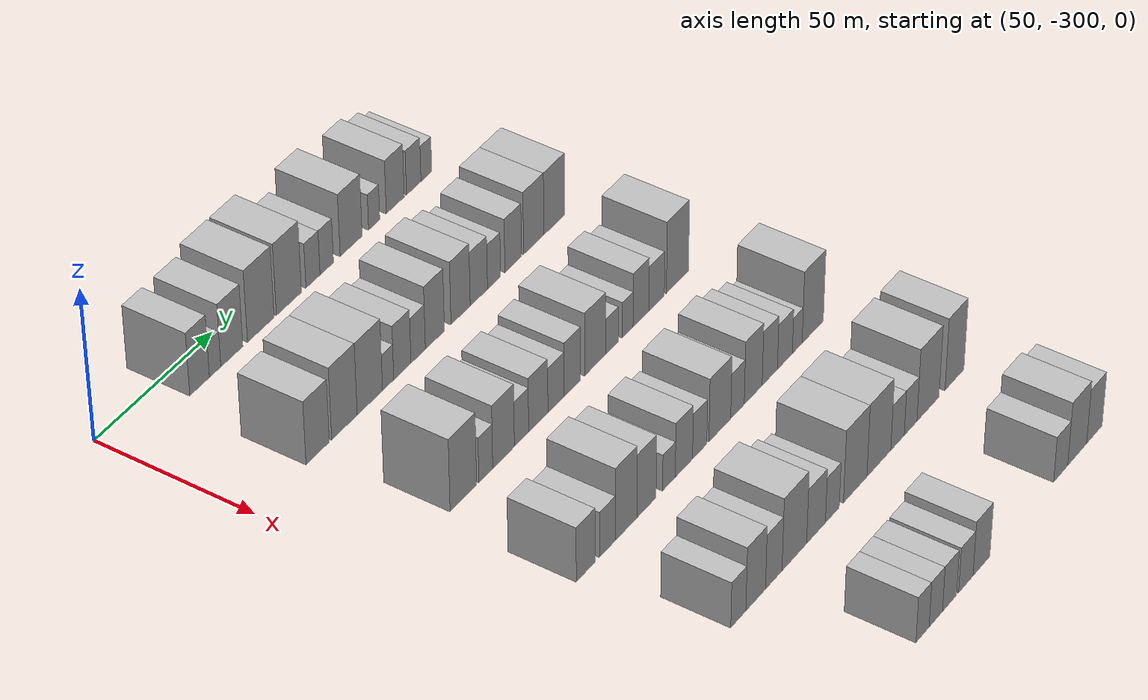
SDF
<sdf version="1.6">
 <world name="default">
  <model name="building_37">
   <static>1</static>
   <pose>50.0000 -268.9825 0 0.000000 0.000000 0.000000</pose>
   <link name="link">
    <pose>0 0 10.50 0 0 0</pose>
    <collision name="collision"><geometry><box><size>20.0000 8.4252 21.0000</size></box></geometry></collision>
    <visual name="visual">
     <cast_shadows>0</cast_shadows>
     <geometry><box><size>20.0000 8.4252 21.0000</size></box></geometry>
     <material>
      <script>
       <uri>model://HANNAS_wall/materials/scripts</uri>
       <uri>model://HANNAS_wall/materials/textures</uri>
       <name>vrc/HANNAS_wall</name>
      </script>
     </material>
    </visual>
   </link>
  </model>
  <model name="building_38">
   <static>1</static>
   <pose>50.0000 -262.3233 0 0.000000 0.000000 0.000000</pose>
   <link name="link">
    <pose>0 0 6.00 0 0 0</pose>
    <collision name="collision"><geometry><box><size>20.0000 4.8932 12.0000</size></box></geometry></collision>
    <visual name="visual">
     <cast_shadows>0</cast_shadows>
     <geometry><box><size>20.0000 4.8932 12.0000</size></box></geometry>
     <material>
      <script>
       <uri>model://HANNAS_wall/materials/scripts</uri>
       <uri>model://HANNAS_wall/materials/textures</uri>
       <name>vrc/HANNAS_wall</name>
      </script>
     </material>
    </visual>
   </link>
  </model>
  <model name="building_39">
   <static>1</static>
   <pose>50.0000 -255.0988 0 0.000000 0.000000 0.000000</pose>
   <link name="link">
    <pose>0 0 10.50 0 0 0</pose>
    <collision name="collision"><geometry><box><size>20.0000 9.5558 21.0000</size></box></geometry></collision>
    <visual name="visual">
     <cast_shadows>0</cast_shadows>
     <geometry><box><size>20.0000 9.5558 21.0000</size></box></geometry>
     <material>
      <script>
       <uri>model://HANNAS_wall/materials/scripts</uri>
       <uri>model://HANNAS_wall/materials/textures</uri>
       <name>vrc/HANNAS_wall</name>
      </script>
     </material>
    </visual>
   </link>
  </model>
  <model name="building_40">
   <static>1</static>
   <pose>50.0000 -242.4842 0 0.000000 0.000000 0.000000</pose>
   <link name="link">
    <pose>0 0 12.00 0 0 0</pose>
    <collision name="collision"><geometry><box><size>20.0000 11.6735 24.0000</size></box></geometry></collision>
    <visual name="visual">
     <cast_shadows>0</cast_shadows>
     <geometry><box><size>20.0000 11.6735 24.0000</size></box></geometry>
     <material>
      <script>
       <uri>model://HANNAS_wall/materials/scripts</uri>
       <uri>model://HANNAS_wall/materials/textures</uri>
       <name>vrc/HANNAS_wall</name>
      </script>
     </material>
    </visual>
   </link>
  </model>
  <model name="building_41">
   <static>1</static>
   <pose>50.0000 -230.0605 0 0.000000 0.000000 0.000000</pose>
   <link name="link">
    <pose>0 0 12.00 0 0 0</pose>
    <collision name="collision"><geometry><box><size>20.0000 11.1737 24.0000</size></box></geometry></collision>
    <visual name="visual">
     <cast_shadows>0</cast_shadows>
     <geometry><box><size>20.0000 11.1737 24.0000</size></box></geometry>
     <material>
      <script>
       <uri>model://HANNAS_wall/materials/scripts</uri>
       <uri>model://HANNAS_wall/materials/textures</uri>
       <name>vrc/HANNAS_wall</name>
      </script>
     </material>
    </visual>
   </link>
  </model>
  <model name="building_42">
   <static>1</static>
   <pose>50.0000 -219.3116 0 0.000000 0.000000 0.000000</pose>
   <link name="link">
    <pose>0 0 7.50 0 0 0</pose>
    <collision name="collision"><geometry><box><size>20.0000 6.3242 15.0000</size></box></geometry></collision>
    <visual name="visual">
     <cast_shadows>0</cast_shadows>
     <geometry><box><size>20.0000 6.3242 15.0000</size></box></geometry>
     <material>
      <script>
       <uri>model://HANNAS_wall/materials/scripts</uri>
       <uri>model://HANNAS_wall/materials/textures</uri>
       <name>vrc/HANNAS_wall</name>
      </script>
     </material>
    </visual>
   </link>
  </model>
  <model name="building_43">
   <static>1</static>
   <pose>50.0000 -213.1050 0 0.000000 0.000000 0.000000</pose>
   <link name="link">
    <pose>0 0 7.50 0 0 0</pose>
    <collision name="collision"><geometry><box><size>20.0000 6.0891 15.0000</size></box></geometry></collision>
    <visual name="visual">
     <cast_shadows>0</cast_shadows>
     <geometry><box><size>20.0000 6.0891 15.0000</size></box></geometry>
     <material>
      <script>
       <uri>model://HANNAS_wall/materials/scripts</uri>
       <uri>model://HANNAS_wall/materials/textures</uri>
       <name>vrc/HANNAS_wall</name>
      </script>
     </material>
    </visual>
   </link>
  </model>
  <model name="building_44">
   <static>1</static>
   <pose>50.0000 -202.0344 0 0.000000 0.000000 0.000000</pose>
   <link name="link">
    <pose>0 0 10.50 0 0 0</pose>
    <collision name="collision"><geometry><box><size>20.0000 10.0521 21.0000</size></box></geometry></collision>
    <visual name="visual">
     <cast_shadows>0</cast_shadows>
     <geometry><box><size>20.0000 10.0521 21.0000</size></box></geometry>
     <material>
      <script>
       <uri>model://HANNAS_wall/materials/scripts</uri>
       <uri>model://HANNAS_wall/materials/textures</uri>
       <name>vrc/HANNAS_wall</name>
      </script>
     </material>
    </visual>
   </link>
  </model>
  <model name="building_45">
   <static>1</static>
   <pose>50.0000 -191.4373 0 0.000000 0.000000 0.000000</pose>
   <link name="link">
    <pose>0 0 6.00 0 0 0</pose>
    <collision name="collision"><geometry><box><size>20.0000 5.1422 12.0000</size></box></geometry></collision>
    <visual name="visual">
     <cast_shadows>0</cast_shadows>
     <geometry><box><size>20.0000 5.1422 12.0000</size></box></geometry>
     <material>
      <script>
       <uri>model://HANNAS_wall/materials/scripts</uri>
       <uri>model://HANNAS_wall/materials/textures</uri>
       <name>vrc/HANNAS_wall</name>
      </script>
     </material>
    </visual>
   </link>
  </model>
  <model name="building_46">
   <static>1</static>
   <pose>50.0000 -181.6543 0 0.000000 0.000000 0.000000</pose>
   <link name="link">
    <pose>0 0 9.00 0 0 0</pose>
    <collision name="collision"><geometry><box><size>20.0000 8.4238 18.0000</size></box></geometry></collision>
    <visual name="visual">
     <cast_shadows>0</cast_shadows>
     <geometry><box><size>20.0000 8.4238 18.0000</size></box></geometry>
     <material>
      <script>
       <uri>model://HANNAS_wall/materials/scripts</uri>
       <uri>model://HANNAS_wall/materials/textures</uri>
       <name>vrc/HANNAS_wall</name>
      </script>
     </material>
    </visual>
   </link>
  </model>
  <model name="building_47">
   <static>1</static>
   <pose>50.0000 -173.0254 0 0.000000 0.000000 0.000000</pose>
   <link name="link">
    <pose>0 0 7.50 0 0 0</pose>
    <collision name="collision"><geometry><box><size>20.0000 6.8339 15.0000</size></box></geometry></collision>
    <visual name="visual">
     <cast_shadows>0</cast_shadows>
     <geometry><box><size>20.0000 6.8339 15.0000</size></box></geometry>
     <material>
      <script>
       <uri>model://HANNAS_wall/materials/scripts</uri>
       <uri>model://HANNAS_wall/materials/textures</uri>
       <name>vrc/HANNAS_wall</name>
      </script>
     </material>
    </visual>
   </link>
  </model>
  <model name="building_48">
   <static>1</static>
   <pose>50.0000 -167.0512 0 0.000000 0.000000 0.000000</pose>
   <link name="link">
    <pose>0 0 6.00 0 0 0</pose>
    <collision name="collision"><geometry><box><size>20.0000 5.1144 12.0000</size></box></geometry></collision>
    <visual name="visual">
     <cast_shadows>0</cast_shadows>
     <geometry><box><size>20.0000 5.1144 12.0000</size></box></geometry>
     <material>
      <script>
       <uri>model://HANNAS_wall/materials/scripts</uri>
       <uri>model://HANNAS_wall/materials/textures</uri>
       <name>vrc/HANNAS_wall</name>
      </script>
     </material>
    </visual>
   </link>
  </model>
  <model name="building_174">
   <static>1</static>
   <pose>90.0000 -273.3485 0 0.000000 0.000000 0.000000</pose>
   <link name="link">
    <pose>0 0 10.50 0 0 0</pose>
    <collision name="collision"><geometry><box><size>20.0000 10.0817 21.0000</size></box></geometry></collision>
    <visual name="visual">
     <cast_shadows>0</cast_shadows>
     <geometry><box><size>20.0000 10.0817 21.0000</size></box></geometry>
     <material>
      <script>
       <uri>model://HANNAS_wall/materials/scripts</uri>
       <uri>model://HANNAS_wall/materials/textures</uri>
       <name>vrc/HANNAS_wall</name>
      </script>
     </material>
    </visual>
   </link>
  </model>
  <model name="building_175">
   <static>1</static>
   <pose>90.0000 -261.7216 0 0.000000 0.000000 0.000000</pose>
   <link name="link">
    <pose>0 0 12.00 0 0 0</pose>
    <collision name="collision"><geometry><box><size>20.0000 11.1722 24.0000</size></box></geometry></collision>
    <visual name="visual">
     <cast_shadows>0</cast_shadows>
     <geometry><box><size>20.0000 11.1722 24.0000</size></box></geometry>
     <material>
      <script>
       <uri>model://HANNAS_wall/materials/scripts</uri>
       <uri>model://HANNAS_wall/materials/textures</uri>
       <name>vrc/HANNAS_wall</name>
      </script>
     </material>
    </visual>
   </link>
  </model>
  <model name="building_176">
   <static>1</static>
   <pose>90.0000 -250.5348 0 0.000000 0.000000 0.000000</pose>
   <link name="link">
    <pose>0 0 12.00 0 0 0</pose>
    <collision name="collision"><geometry><box><size>20.0000 11.2014 24.0000</size></box></geometry></collision>
    <visual name="visual">
     <cast_shadows>0</cast_shadows>
     <geometry><box><size>20.0000 11.2014 24.0000</size></box></geometry>
     <material>
      <script>
       <uri>model://HANNAS_wall/materials/scripts</uri>
       <uri>model://HANNAS_wall/materials/textures</uri>
       <name>vrc/HANNAS_wall</name>
      </script>
     </material>
    </visual>
   </link>
  </model>
  <model name="building_177">
   <static>1</static>
   <pose>90.0000 -242.4328 0 0.000000 0.000000 0.000000</pose>
   <link name="link">
    <pose>0 0 6.00 0 0 0</pose>
    <collision name="collision"><geometry><box><size>20.0000 5.0027 12.0000</size></box></geometry></collision>
    <visual name="visual">
     <cast_shadows>0</cast_shadows>
     <geometry><box><size>20.0000 5.0027 12.0000</size></box></geometry>
     <material>
      <script>
       <uri>model://HANNAS_wall/materials/scripts</uri>
       <uri>model://HANNAS_wall/materials/textures</uri>
       <name>vrc/HANNAS_wall</name>
      </script>
     </material>
    </visual>
   </link>
  </model>
  <model name="building_178">
   <static>1</static>
   <pose>90.0000 -236.0680 0 0.000000 0.000000 0.000000</pose>
   <link name="link">
    <pose>0 0 9.00 0 0 0</pose>
    <collision name="collision"><geometry><box><size>20.0000 7.7268 18.0000</size></box></geometry></collision>
    <visual name="visual">
     <cast_shadows>0</cast_shadows>
     <geometry><box><size>20.0000 7.7268 18.0000</size></box></geometry>
     <material>
      <script>
       <uri>model://HANNAS_wall/materials/scripts</uri>
       <uri>model://HANNAS_wall/materials/textures</uri>
       <name>vrc/HANNAS_wall</name>
      </script>
     </material>
    </visual>
   </link>
  </model>
  <model name="building_179">
   <static>1</static>
   <pose>90.0000 -228.9539 0 0.000000 0.000000 0.000000</pose>
   <link name="link">
    <pose>0 0 7.50 0 0 0</pose>
    <collision name="collision"><geometry><box><size>20.0000 6.5014 15.0000</size></box></geometry></collision>
    <visual name="visual">
     <cast_shadows>0</cast_shadows>
     <geometry><box><size>20.0000 6.5014 15.0000</size></box></geometry>
     <material>
      <script>
       <uri>model://HANNAS_wall/materials/scripts</uri>
       <uri>model://HANNAS_wall/materials/textures</uri>
       <name>vrc/HANNAS_wall</name>
      </script>
     </material>
    </visual>
   </link>
  </model>
  <model name="building_180">
   <static>1</static>
   <pose>90.0000 -221.3732 0 0.000000 0.000000 0.000000</pose>
   <link name="link">
    <pose>0 0 10.50 0 0 0</pose>
    <collision name="collision"><geometry><box><size>20.0000 8.6600 21.0000</size></box></geometry></collision>
    <visual name="visual">
     <cast_shadows>0</cast_shadows>
     <geometry><box><size>20.0000 8.6600 21.0000</size></box></geometry>
     <material>
      <script>
       <uri>model://HANNAS_wall/materials/scripts</uri>
       <uri>model://HANNAS_wall/materials/textures</uri>
       <name>vrc/HANNAS_wall</name>
      </script>
     </material>
    </visual>
   </link>
  </model>
  <model name="building_181">
   <static>1</static>
   <pose>90.0000 -209.6151 0 0.000000 0.000000 0.000000</pose>
   <link name="link">
    <pose>0 0 10.50 0 0 0</pose>
    <collision name="collision"><geometry><box><size>20.0000 8.8563 21.0000</size></box></geometry></collision>
    <visual name="visual">
     <cast_shadows>0</cast_shadows>
     <geometry><box><size>20.0000 8.8563 21.0000</size></box></geometry>
     <material>
      <script>
       <uri>model://HANNAS_wall/materials/scripts</uri>
       <uri>model://HANNAS_wall/materials/textures</uri>
       <name>vrc/HANNAS_wall</name>
      </script>
     </material>
    </visual>
   </link>
  </model>
  <model name="building_182">
   <static>1</static>
   <pose>90.0000 -201.1716 0 0.000000 0.000000 0.000000</pose>
   <link name="link">
    <pose>0 0 9.00 0 0 0</pose>
    <collision name="collision"><geometry><box><size>20.0000 8.0307 18.0000</size></box></geometry></collision>
    <visual name="visual">
     <cast_shadows>0</cast_shadows>
     <geometry><box><size>20.0000 8.0307 18.0000</size></box></geometry>
     <material>
      <script>
       <uri>model://HANNAS_wall/materials/scripts</uri>
       <uri>model://HANNAS_wall/materials/textures</uri>
       <name>vrc/HANNAS_wall</name>
      </script>
     </material>
    </visual>
   </link>
  </model>
  <model name="building_183">
   <static>1</static>
   <pose>90.0000 -194.0828 0 0.000000 0.000000 0.000000</pose>
   <link name="link">
    <pose>0 0 7.50 0 0 0</pose>
    <collision name="collision"><geometry><box><size>20.0000 6.1470 15.0000</size></box></geometry></collision>
    <visual name="visual">
     <cast_shadows>0</cast_shadows>
     <geometry><box><size>20.0000 6.1470 15.0000</size></box></geometry>
     <material>
      <script>
       <uri>model://HANNAS_wall/materials/scripts</uri>
       <uri>model://HANNAS_wall/materials/textures</uri>
       <name>vrc/HANNAS_wall</name>
      </script>
     </material>
    </visual>
   </link>
  </model>
  <model name="building_184">
   <static>1</static>
   <pose>90.0000 -185.0873 0 0.000000 0.000000 0.000000</pose>
   <link name="link">
    <pose>0 0 9.00 0 0 0</pose>
    <collision name="collision"><geometry><box><size>20.0000 7.8440 18.0000</size></box></geometry></collision>
    <visual name="visual">
     <cast_shadows>0</cast_shadows>
     <geometry><box><size>20.0000 7.8440 18.0000</size></box></geometry>
     <material>
      <script>
       <uri>model://HANNAS_wall/materials/scripts</uri>
       <uri>model://HANNAS_wall/materials/textures</uri>
       <name>vrc/HANNAS_wall</name>
      </script>
     </material>
    </visual>
   </link>
  </model>
  <model name="building_185">
   <static>1</static>
   <pose>90.0000 -175.3362 0 0.000000 0.000000 0.000000</pose>
   <link name="link">
    <pose>0 0 10.50 0 0 0</pose>
    <collision name="collision"><geometry><box><size>20.0000 9.6582 21.0000</size></box></geometry></collision>
    <visual name="visual">
     <cast_shadows>0</cast_shadows>
     <geometry><box><size>20.0000 9.6582 21.0000</size></box></geometry>
     <material>
      <script>
       <uri>model://HANNAS_wall/materials/scripts</uri>
       <uri>model://HANNAS_wall/materials/textures</uri>
       <name>vrc/HANNAS_wall</name>
      </script>
     </material>
    </visual>
   </link>
  </model>
  <model name="building_186">
   <static>1</static>
   <pose>90.0000 -165.4859 0 0.000000 0.000000 0.000000</pose>
   <link name="link">
    <pose>0 0 10.50 0 0 0</pose>
    <collision name="collision"><geometry><box><size>20.0000 10.0424 21.0000</size></box></geometry></collision>
    <visual name="visual">
     <cast_shadows>0</cast_shadows>
     <geometry><box><size>20.0000 10.0424 21.0000</size></box></geometry>
     <material>
      <script>
       <uri>model://HANNAS_wall/materials/scripts</uri>
       <uri>model://HANNAS_wall/materials/textures</uri>
       <name>vrc/HANNAS_wall</name>
      </script>
     </material>
    </visual>
   </link>
  </model>
  <model name="building_305">
   <static>1</static>
   <pose>130.0000 -267.2592 0 0.000000 0.000000 0.000000</pose>
   <link name="link">
    <pose>0 0 12.00 0 0 0</pose>
    <collision name="collision"><geometry><box><size>20.0000 11.7019 24.0000</size></box></geometry></collision>
    <visual name="visual">
     <cast_shadows>0</cast_shadows>
     <geometry><box><size>20.0000 11.7019 24.0000</size></box></geometry>
     <material>
      <script>
       <uri>model://HANNAS_wall/materials/scripts</uri>
       <uri>model://HANNAS_wall/materials/textures</uri>
       <name>vrc/HANNAS_wall</name>
      </script>
     </material>
    </visual>
   </link>
  </model>
  <model name="building_306">
   <static>1</static>
   <pose>130.0000 -257.3132 0 0.000000 0.000000 0.000000</pose>
   <link name="link">
    <pose>0 0 7.50 0 0 0</pose>
    <collision name="collision"><geometry><box><size>20.0000 6.1902 15.0000</size></box></geometry></collision>
    <visual name="visual">
     <cast_shadows>0</cast_shadows>
     <geometry><box><size>20.0000 6.1902 15.0000</size></box></geometry>
     <material>
      <script>
       <uri>model://HANNAS_wall/materials/scripts</uri>
       <uri>model://HANNAS_wall/materials/textures</uri>
       <name>vrc/HANNAS_wall</name>
      </script>
     </material>
    </visual>
   </link>
  </model>
  <model name="building_307">
   <static>1</static>
   <pose>130.0000 -249.3448 0 0.000000 0.000000 0.000000</pose>
   <link name="link">
    <pose>0 0 10.50 0 0 0</pose>
    <collision name="collision"><geometry><box><size>20.0000 9.7466 21.0000</size></box></geometry></collision>
    <visual name="visual">
     <cast_shadows>0</cast_shadows>
     <geometry><box><size>20.0000 9.7466 21.0000</size></box></geometry>
     <material>
      <script>
       <uri>model://HANNAS_wall/materials/scripts</uri>
       <uri>model://HANNAS_wall/materials/textures</uri>
       <name>vrc/HANNAS_wall</name>
      </script>
     </material>
    </visual>
   </link>
  </model>
  <model name="building_308">
   <static>1</static>
   <pose>130.0000 -241.2267 0 0.000000 0.000000 0.000000</pose>
   <link name="link">
    <pose>0 0 7.50 0 0 0</pose>
    <collision name="collision"><geometry><box><size>20.0000 6.4896 15.0000</size></box></geometry></collision>
    <visual name="visual">
     <cast_shadows>0</cast_shadows>
     <geometry><box><size>20.0000 6.4896 15.0000</size></box></geometry>
     <material>
      <script>
       <uri>model://HANNAS_wall/materials/scripts</uri>
       <uri>model://HANNAS_wall/materials/textures</uri>
       <name>vrc/HANNAS_wall</name>
      </script>
     </material>
    </visual>
   </link>
  </model>
  <model name="building_309">
   <static>1</static>
   <pose>130.0000 -233.5711 0 0.000000 0.000000 0.000000</pose>
   <link name="link">
    <pose>0 0 9.00 0 0 0</pose>
    <collision name="collision"><geometry><box><size>20.0000 8.8214 18.0000</size></box></geometry></collision>
    <visual name="visual">
     <cast_shadows>0</cast_shadows>
     <geometry><box><size>20.0000 8.8214 18.0000</size></box></geometry>
     <material>
      <script>
       <uri>model://HANNAS_wall/materials/scripts</uri>
       <uri>model://HANNAS_wall/materials/textures</uri>
       <name>vrc/HANNAS_wall</name>
      </script>
     </material>
    </visual>
   </link>
  </model>
  <model name="building_310">
   <static>1</static>
   <pose>130.0000 -225.4426 0 0.000000 0.000000 0.000000</pose>
   <link name="link">
    <pose>0 0 7.50 0 0 0</pose>
    <collision name="collision"><geometry><box><size>20.0000 7.4357 15.0000</size></box></geometry></collision>
    <visual name="visual">
     <cast_shadows>0</cast_shadows>
     <geometry><box><size>20.0000 7.4357 15.0000</size></box></geometry>
     <material>
      <script>
       <uri>model://HANNAS_wall/materials/scripts</uri>
       <uri>model://HANNAS_wall/materials/textures</uri>
       <name>vrc/HANNAS_wall</name>
      </script>
     </material>
    </visual>
   </link>
  </model>
  <model name="building_311">
   <static>1</static>
   <pose>130.0000 -217.9272 0 0.000000 0.000000 0.000000</pose>
   <link name="link">
    <pose>0 0 9.00 0 0 0</pose>
    <collision name="collision"><geometry><box><size>20.0000 7.5951 18.0000</size></box></geometry></collision>
    <visual name="visual">
     <cast_shadows>0</cast_shadows>
     <geometry><box><size>20.0000 7.5951 18.0000</size></box></geometry>
     <material>
      <script>
       <uri>model://HANNAS_wall/materials/scripts</uri>
       <uri>model://HANNAS_wall/materials/textures</uri>
       <name>vrc/HANNAS_wall</name>
      </script>
     </material>
    </visual>
   </link>
  </model>
  <model name="building_312">
   <static>1</static>
   <pose>130.0000 -207.2298 0 0.000000 0.000000 0.000000</pose>
   <link name="link">
    <pose>0 0 10.50 0 0 0</pose>
    <collision name="collision"><geometry><box><size>20.0000 9.7997 21.0000</size></box></geometry></collision>
    <visual name="visual">
     <cast_shadows>0</cast_shadows>
     <geometry><box><size>20.0000 9.7997 21.0000</size></box></geometry>
     <material>
      <script>
       <uri>model://HANNAS_wall/materials/scripts</uri>
       <uri>model://HANNAS_wall/materials/textures</uri>
       <name>vrc/HANNAS_wall</name>
      </script>
     </material>
    </visual>
   </link>
  </model>
  <model name="building_313">
   <static>1</static>
   <pose>130.0000 -199.3482 0 0.000000 0.000000 0.000000</pose>
   <link name="link">
    <pose>0 0 6.00 0 0 0</pose>
    <collision name="collision"><geometry><box><size>20.0000 5.9635 12.0000</size></box></geometry></collision>
    <visual name="visual">
     <cast_shadows>0</cast_shadows>
     <geometry><box><size>20.0000 5.9635 12.0000</size></box></geometry>
     <material>
      <script>
       <uri>model://HANNAS_wall/materials/scripts</uri>
       <uri>model://HANNAS_wall/materials/textures</uri>
       <name>vrc/HANNAS_wall</name>
      </script>
     </material>
    </visual>
   </link>
  </model>
  <model name="building_314">
   <static>1</static>
   <pose>130.0000 -191.8226 0 0.000000 0.000000 0.000000</pose>
   <link name="link">
    <pose>0 0 6.00 0 0 0</pose>
    <collision name="collision"><geometry><box><size>20.0000 5.0875 12.0000</size></box></geometry></collision>
    <visual name="visual">
     <cast_shadows>0</cast_shadows>
     <geometry><box><size>20.0000 5.0875 12.0000</size></box></geometry>
     <material>
      <script>
       <uri>model://HANNAS_wall/materials/scripts</uri>
       <uri>model://HANNAS_wall/materials/textures</uri>
       <name>vrc/HANNAS_wall</name>
      </script>
     </material>
    </visual>
   </link>
  </model>
  <model name="building_315">
   <static>1</static>
   <pose>130.0000 -185.4349 0 0.000000 0.000000 0.000000</pose>
   <link name="link">
    <pose>0 0 9.00 0 0 0</pose>
    <collision name="collision"><geometry><box><size>20.0000 7.6880 18.0000</size></box></geometry></collision>
    <visual name="visual">
     <cast_shadows>0</cast_shadows>
     <geometry><box><size>20.0000 7.6880 18.0000</size></box></geometry>
     <material>
      <script>
       <uri>model://HANNAS_wall/materials/scripts</uri>
       <uri>model://HANNAS_wall/materials/textures</uri>
       <name>vrc/HANNAS_wall</name>
      </script>
     </material>
    </visual>
   </link>
  </model>
  <model name="building_316">
   <static>1</static>
   <pose>130.0000 -177.8815 0 0.000000 0.000000 0.000000</pose>
   <link name="link">
    <pose>0 0 7.50 0 0 0</pose>
    <collision name="collision"><geometry><box><size>20.0000 7.4187 15.0000</size></box></geometry></collision>
    <visual name="visual">
     <cast_shadows>0</cast_shadows>
     <geometry><box><size>20.0000 7.4187 15.0000</size></box></geometry>
     <material>
      <script>
       <uri>model://HANNAS_wall/materials/scripts</uri>
       <uri>model://HANNAS_wall/materials/textures</uri>
       <name>vrc/HANNAS_wall</name>
      </script>
     </material>
    </visual>
   </link>
  </model>
  <model name="building_317">
   <static>1</static>
   <pose>130.0000 -167.7572 0 0.000000 0.000000 0.000000</pose>
   <link name="link">
    <pose>0 0 12.00 0 0 0</pose>
    <collision name="collision"><geometry><box><size>20.0000 10.8299 24.0000</size></box></geometry></collision>
    <visual name="visual">
     <cast_shadows>0</cast_shadows>
     <geometry><box><size>20.0000 10.8299 24.0000</size></box></geometry>
     <material>
      <script>
       <uri>model://HANNAS_wall/materials/scripts</uri>
       <uri>model://HANNAS_wall/materials/textures</uri>
       <name>vrc/HANNAS_wall</name>
      </script>
     </material>
    </visual>
   </link>
  </model>
  <model name="building_437">
   <static>1</static>
   <pose>170.0000 -273.0698 0 0.000000 0.000000 0.000000</pose>
   <link name="link">
    <pose>0 0 9.00 0 0 0</pose>
    <collision name="collision"><geometry><box><size>20.0000 8.4085 18.0000</size></box></geometry></collision>
    <visual name="visual">
     <cast_shadows>0</cast_shadows>
     <geometry><box><size>20.0000 8.4085 18.0000</size></box></geometry>
     <material>
      <script>
       <uri>model://HANNAS_wall/materials/scripts</uri>
       <uri>model://HANNAS_wall/materials/textures</uri>
       <name>vrc/HANNAS_wall</name>
      </script>
     </material>
    </visual>
   </link>
  </model>
  <model name="building_438">
   <static>1</static>
   <pose>170.0000 -263.3214 0 0.000000 0.000000 0.000000</pose>
   <link name="link">
    <pose>0 0 7.50 0 0 0</pose>
    <collision name="collision"><geometry><box><size>20.0000 7.0884 15.0000</size></box></geometry></collision>
    <visual name="visual">
     <cast_shadows>0</cast_shadows>
     <geometry><box><size>20.0000 7.0884 15.0000</size></box></geometry>
     <material>
      <script>
       <uri>model://HANNAS_wall/materials/scripts</uri>
       <uri>model://HANNAS_wall/materials/textures</uri>
       <name>vrc/HANNAS_wall</name>
      </script>
     </material>
    </visual>
   </link>
  </model>
  <model name="building_439">
   <static>1</static>
   <pose>170.0000 -254.8704 0 0.000000 0.000000 0.000000</pose>
   <link name="link">
    <pose>0 0 12.00 0 0 0</pose>
    <collision name="collision"><geometry><box><size>20.0000 9.8137 24.0000</size></box></geometry></collision>
    <visual name="visual">
     <cast_shadows>0</cast_shadows>
     <geometry><box><size>20.0000 9.8137 24.0000</size></box></geometry>
     <material>
      <script>
       <uri>model://HANNAS_wall/materials/scripts</uri>
       <uri>model://HANNAS_wall/materials/textures</uri>
       <name>vrc/HANNAS_wall</name>
      </script>
     </material>
    </visual>
   </link>
  </model>
  <model name="building_440">
   <static>1</static>
   <pose>170.0000 -245.5204 0 0.000000 0.000000 0.000000</pose>
   <link name="link">
    <pose>0 0 10.50 0 0 0</pose>
    <collision name="collision"><geometry><box><size>20.0000 8.8862 21.0000</size></box></geometry></collision>
    <visual name="visual">
     <cast_shadows>0</cast_shadows>
     <geometry><box><size>20.0000 8.8862 21.0000</size></box></geometry>
     <material>
      <script>
       <uri>model://HANNAS_wall/materials/scripts</uri>
       <uri>model://HANNAS_wall/materials/textures</uri>
       <name>vrc/HANNAS_wall</name>
      </script>
     </material>
    </visual>
   </link>
  </model>
  <model name="building_441">
   <static>1</static>
   <pose>170.0000 -235.1240 0 0.000000 0.000000 0.000000</pose>
   <link name="link">
    <pose>0 0 6.00 0 0 0</pose>
    <collision name="collision"><geometry><box><size>20.0000 5.9066 12.0000</size></box></geometry></collision>
    <visual name="visual">
     <cast_shadows>0</cast_shadows>
     <geometry><box><size>20.0000 5.9066 12.0000</size></box></geometry>
     <material>
      <script>
       <uri>model://HANNAS_wall/materials/scripts</uri>
       <uri>model://HANNAS_wall/materials/textures</uri>
       <name>vrc/HANNAS_wall</name>
      </script>
     </material>
    </visual>
   </link>
  </model>
  <model name="building_442">
   <static>1</static>
   <pose>170.0000 -228.1143 0 0.000000 0.000000 0.000000</pose>
   <link name="link">
    <pose>0 0 9.00 0 0 0</pose>
    <collision name="collision"><geometry><box><size>20.0000 8.1128 18.0000</size></box></geometry></collision>
    <visual name="visual">
     <cast_shadows>0</cast_shadows>
     <geometry><box><size>20.0000 8.1128 18.0000</size></box></geometry>
     <material>
      <script>
       <uri>model://HANNAS_wall/materials/scripts</uri>
       <uri>model://HANNAS_wall/materials/textures</uri>
       <name>vrc/HANNAS_wall</name>
      </script>
     </material>
    </visual>
   </link>
  </model>
  <model name="building_443">
   <static>1</static>
   <pose>170.0000 -220.7055 0 0.000000 0.000000 0.000000</pose>
   <link name="link">
    <pose>0 0 7.50 0 0 0</pose>
    <collision name="collision"><geometry><box><size>20.0000 6.7049 15.0000</size></box></geometry></collision>
    <visual name="visual">
     <cast_shadows>0</cast_shadows>
     <geometry><box><size>20.0000 6.7049 15.0000</size></box></geometry>
     <material>
      <script>
       <uri>model://HANNAS_wall/materials/scripts</uri>
       <uri>model://HANNAS_wall/materials/textures</uri>
       <name>vrc/HANNAS_wall</name>
      </script>
     </material>
    </visual>
   </link>
  </model>
  <model name="building_444">
   <static>1</static>
   <pose>170.0000 -211.1580 0 0.000000 0.000000 0.000000</pose>
   <link name="link">
    <pose>0 0 10.50 0 0 0</pose>
    <collision name="collision"><geometry><box><size>20.0000 10.3900 21.0000</size></box></geometry></collision>
    <visual name="visual">
     <cast_shadows>0</cast_shadows>
     <geometry><box><size>20.0000 10.3900 21.0000</size></box></geometry>
     <material>
      <script>
       <uri>model://HANNAS_wall/materials/scripts</uri>
       <uri>model://HANNAS_wall/materials/textures</uri>
       <name>vrc/HANNAS_wall</name>
      </script>
     </material>
    </visual>
   </link>
  </model>
  <model name="building_445">
   <static>1</static>
   <pose>170.0000 -202.6993 0 0.000000 0.000000 0.000000</pose>
   <link name="link">
    <pose>0 0 7.50 0 0 0</pose>
    <collision name="collision"><geometry><box><size>20.0000 6.5274 15.0000</size></box></geometry></collision>
    <visual name="visual">
     <cast_shadows>0</cast_shadows>
     <geometry><box><size>20.0000 6.5274 15.0000</size></box></geometry>
     <material>
      <script>
       <uri>model://HANNAS_wall/materials/scripts</uri>
       <uri>model://HANNAS_wall/materials/textures</uri>
       <name>vrc/HANNAS_wall</name>
      </script>
     </material>
    </visual>
   </link>
  </model>
  <model name="building_446">
   <static>1</static>
   <pose>170.0000 -195.0933 0 0.000000 0.000000 0.000000</pose>
   <link name="link">
    <pose>0 0 10.50 0 0 0</pose>
    <collision name="collision"><geometry><box><size>20.0000 8.6846 21.0000</size></box></geometry></collision>
    <visual name="visual">
     <cast_shadows>0</cast_shadows>
     <geometry><box><size>20.0000 8.6846 21.0000</size></box></geometry>
     <material>
      <script>
       <uri>model://HANNAS_wall/materials/scripts</uri>
       <uri>model://HANNAS_wall/materials/textures</uri>
       <name>vrc/HANNAS_wall</name>
      </script>
     </material>
    </visual>
   </link>
  </model>
  <model name="building_447">
   <static>1</static>
   <pose>170.0000 -187.0167 0 0.000000 0.000000 0.000000</pose>
   <link name="link">
    <pose>0 0 9.00 0 0 0</pose>
    <collision name="collision"><geometry><box><size>20.0000 7.4686 18.0000</size></box></geometry></collision>
    <visual name="visual">
     <cast_shadows>0</cast_shadows>
     <geometry><box><size>20.0000 7.4686 18.0000</size></box></geometry>
     <material>
      <script>
       <uri>model://HANNAS_wall/materials/scripts</uri>
       <uri>model://HANNAS_wall/materials/textures</uri>
       <name>vrc/HANNAS_wall</name>
      </script>
     </material>
    </visual>
   </link>
  </model>
  <model name="building_448">
   <static>1</static>
   <pose>170.0000 -179.5986 0 0.000000 0.000000 0.000000</pose>
   <link name="link">
    <pose>0 0 7.50 0 0 0</pose>
    <collision name="collision"><geometry><box><size>20.0000 7.3676 15.0000</size></box></geometry></collision>
    <visual name="visual">
     <cast_shadows>0</cast_shadows>
     <geometry><box><size>20.0000 7.3676 15.0000</size></box></geometry>
     <material>
      <script>
       <uri>model://HANNAS_wall/materials/scripts</uri>
       <uri>model://HANNAS_wall/materials/textures</uri>
       <name>vrc/HANNAS_wall</name>
      </script>
     </material>
    </visual>
   </link>
  </model>
  <model name="building_449">
   <static>1</static>
   <pose>170.0000 -173.4851 0 0.000000 0.000000 0.000000</pose>
   <link name="link">
    <pose>0 0 6.00 0 0 0</pose>
    <collision name="collision"><geometry><box><size>20.0000 4.8594 12.0000</size></box></geometry></collision>
    <visual name="visual">
     <cast_shadows>0</cast_shadows>
     <geometry><box><size>20.0000 4.8594 12.0000</size></box></geometry>
     <material>
      <script>
       <uri>model://HANNAS_wall/materials/scripts</uri>
       <uri>model://HANNAS_wall/materials/textures</uri>
       <name>vrc/HANNAS_wall</name>
      </script>
     </material>
    </visual>
   </link>
  </model>
  <model name="building_450">
   <static>1</static>
   <pose>170.0000 -165.7617 0 0.000000 0.000000 0.000000</pose>
   <link name="link">
    <pose>0 0 12.00 0 0 0</pose>
    <collision name="collision"><geometry><box><size>20.0000 10.5873 24.0000</size></box></geometry></collision>
    <visual name="visual">
     <cast_shadows>0</cast_shadows>
     <geometry><box><size>20.0000 10.5873 24.0000</size></box></geometry>
     <material>
      <script>
       <uri>model://HANNAS_wall/materials/scripts</uri>
       <uri>model://HANNAS_wall/materials/textures</uri>
       <name>vrc/HANNAS_wall</name>
      </script>
     </material>
    </visual>
   </link>
  </model>
  <model name="building_568">
   <static>1</static>
   <pose>210.0000 -267.0000 0 0.000000 0.000000 0.000000</pose>
   <link name="link">
    <pose>0 0 7.50 0 0 0</pose>
    <collision name="collision"><geometry><box><size>20.0000 6.9314 15.0000</size></box></geometry></collision>
    <visual name="visual">
     <cast_shadows>0</cast_shadows>
     <geometry><box><size>20.0000 6.9314 15.0000</size></box></geometry>
     <material>
      <script>
       <uri>model://HANNAS_wall/materials/scripts</uri>
       <uri>model://HANNAS_wall/materials/textures</uri>
       <name>vrc/HANNAS_wall</name>
      </script>
     </material>
    </visual>
   </link>
  </model>
  <model name="building_569">
   <static>1</static>
   <pose>210.0000 -259.0042 0 0.000000 0.000000 0.000000</pose>
   <link name="link">
    <pose>0 0 10.50 0 0 0</pose>
    <collision name="collision"><geometry><box><size>20.0000 9.0602 21.0000</size></box></geometry></collision>
    <visual name="visual">
     <cast_shadows>0</cast_shadows>
     <geometry><box><size>20.0000 9.0602 21.0000</size></box></geometry>
     <material>
      <script>
       <uri>model://HANNAS_wall/materials/scripts</uri>
       <uri>model://HANNAS_wall/materials/textures</uri>
       <name>vrc/HANNAS_wall</name>
      </script>
     </material>
    </visual>
   </link>
  </model>
  <model name="building_570">
   <static>1</static>
   <pose>210.0000 -250.6088 0 0.000000 0.000000 0.000000</pose>
   <link name="link">
    <pose>0 0 9.00 0 0 0</pose>
    <collision name="collision"><geometry><box><size>20.0000 7.7307 18.0000</size></box></geometry></collision>
    <visual name="visual">
     <cast_shadows>0</cast_shadows>
     <geometry><box><size>20.0000 7.7307 18.0000</size></box></geometry>
     <material>
      <script>
       <uri>model://HANNAS_wall/materials/scripts</uri>
       <uri>model://HANNAS_wall/materials/textures</uri>
       <name>vrc/HANNAS_wall</name>
      </script>
     </material>
    </visual>
   </link>
  </model>
  <model name="building_571">
   <static>1</static>
   <pose>210.0000 -240.9323 0 0.000000 0.000000 0.000000</pose>
   <link name="link">
    <pose>0 0 12.00 0 0 0</pose>
    <collision name="collision"><geometry><box><size>20.0000 11.6222 24.0000</size></box></geometry></collision>
    <visual name="visual">
     <cast_shadows>0</cast_shadows>
     <geometry><box><size>20.0000 11.6222 24.0000</size></box></geometry>
     <material>
      <script>
       <uri>model://HANNAS_wall/materials/scripts</uri>
       <uri>model://HANNAS_wall/materials/textures</uri>
       <name>vrc/HANNAS_wall</name>
      </script>
     </material>
    </visual>
   </link>
  </model>
  <model name="building_572">
   <static>1</static>
   <pose>210.0000 -230.6223 0 0.000000 0.000000 0.000000</pose>
   <link name="link">
    <pose>0 0 9.00 0 0 0</pose>
    <collision name="collision"><geometry><box><size>20.0000 8.9979 18.0000</size></box></geometry></collision>
    <visual name="visual">
     <cast_shadows>0</cast_shadows>
     <geometry><box><size>20.0000 8.9979 18.0000</size></box></geometry>
     <material>
      <script>
       <uri>model://HANNAS_wall/materials/scripts</uri>
       <uri>model://HANNAS_wall/materials/textures</uri>
       <name>vrc/HANNAS_wall</name>
      </script>
     </material>
    </visual>
   </link>
  </model>
  <model name="building_573">
   <static>1</static>
   <pose>210.0000 -222.8004 0 0.000000 0.000000 0.000000</pose>
   <link name="link">
    <pose>0 0 7.50 0 0 0</pose>
    <collision name="collision"><geometry><box><size>20.0000 6.6459 15.0000</size></box></geometry></collision>
    <visual name="visual">
     <cast_shadows>0</cast_shadows>
     <geometry><box><size>20.0000 6.6459 15.0000</size></box></geometry>
     <material>
      <script>
       <uri>model://HANNAS_wall/materials/scripts</uri>
       <uri>model://HANNAS_wall/materials/textures</uri>
       <name>vrc/HANNAS_wall</name>
      </script>
     </material>
    </visual>
   </link>
  </model>
  <model name="building_574">
   <static>1</static>
   <pose>210.0000 -211.7634 0 0.000000 0.000000 0.000000</pose>
   <link name="link">
    <pose>0 0 12.00 0 0 0</pose>
    <collision name="collision"><geometry><box><size>20.0000 11.4281 24.0000</size></box></geometry></collision>
    <visual name="visual">
     <cast_shadows>0</cast_shadows>
     <geometry><box><size>20.0000 11.4281 24.0000</size></box></geometry>
     <material>
      <script>
       <uri>model://HANNAS_wall/materials/scripts</uri>
       <uri>model://HANNAS_wall/materials/textures</uri>
       <name>vrc/HANNAS_wall</name>
      </script>
     </material>
    </visual>
   </link>
  </model>
  <model name="building_575">
   <static>1</static>
   <pose>210.0000 -200.1582 0 0.000000 0.000000 0.000000</pose>
   <link name="link">
    <pose>0 0 12.00 0 0 0</pose>
    <collision name="collision"><geometry><box><size>20.0000 11.7823 24.0000</size></box></geometry></collision>
    <visual name="visual">
     <cast_shadows>0</cast_shadows>
     <geometry><box><size>20.0000 11.7823 24.0000</size></box></geometry>
     <material>
      <script>
       <uri>model://HANNAS_wall/materials/scripts</uri>
       <uri>model://HANNAS_wall/materials/textures</uri>
       <name>vrc/HANNAS_wall</name>
      </script>
     </material>
    </visual>
   </link>
  </model>
  <model name="building_576">
   <static>1</static>
   <pose>210.0000 -190.9190 0 0.000000 0.000000 0.000000</pose>
   <link name="link">
    <pose>0 0 7.50 0 0 0</pose>
    <collision name="collision"><geometry><box><size>20.0000 6.6960 15.0000</size></box></geometry></collision>
    <visual name="visual">
     <cast_shadows>0</cast_shadows>
     <geometry><box><size>20.0000 6.6960 15.0000</size></box></geometry>
     <material>
      <script>
       <uri>model://HANNAS_wall/materials/scripts</uri>
       <uri>model://HANNAS_wall/materials/textures</uri>
       <name>vrc/HANNAS_wall</name>
      </script>
     </material>
    </visual>
   </link>
  </model>
  <model name="building_577">
   <static>1</static>
   <pose>210.0000 -184.3862 0 0.000000 0.000000 0.000000</pose>
   <link name="link">
    <pose>0 0 7.50 0 0 0</pose>
    <collision name="collision"><geometry><box><size>20.0000 6.3696 15.0000</size></box></geometry></collision>
    <visual name="visual">
     <cast_shadows>0</cast_shadows>
     <geometry><box><size>20.0000 6.3696 15.0000</size></box></geometry>
     <material>
      <script>
       <uri>model://HANNAS_wall/materials/scripts</uri>
       <uri>model://HANNAS_wall/materials/textures</uri>
       <name>vrc/HANNAS_wall</name>
      </script>
     </material>
    </visual>
   </link>
  </model>
  <model name="building_578">
   <static>1</static>
   <pose>210.0000 -175.6193 0 0.000000 0.000000 0.000000</pose>
   <link name="link">
    <pose>0 0 12.00 0 0 0</pose>
    <collision name="collision"><geometry><box><size>20.0000 11.1641 24.0000</size></box></geometry></collision>
    <visual name="visual">
     <cast_shadows>0</cast_shadows>
     <geometry><box><size>20.0000 11.1641 24.0000</size></box></geometry>
     <material>
      <script>
       <uri>model://HANNAS_wall/materials/scripts</uri>
       <uri>model://HANNAS_wall/materials/textures</uri>
       <name>vrc/HANNAS_wall</name>
      </script>
     </material>
    </visual>
   </link>
  </model>
  <model name="building_579">
   <static>1</static>
   <pose>210.0000 -162.1771 0 0.000000 0.000000 0.000000</pose>
   <link name="link">
    <pose>0 0 12.00 0 0 0</pose>
    <collision name="collision"><geometry><box><size>20.0000 9.7202 24.0000</size></box></geometry></collision>
    <visual name="visual">
     <cast_shadows>0</cast_shadows>
     <geometry><box><size>20.0000 9.7202 24.0000</size></box></geometry>
     <material>
      <script>
       <uri>model://HANNAS_wall/materials/scripts</uri>
       <uri>model://HANNAS_wall/materials/textures</uri>
       <name>vrc/HANNAS_wall</name>
      </script>
     </material>
    </visual>
   </link>
  </model>
  <model name="building_706">
   <static>1</static>
   <pose>250.0000 -247.4640 0 0.000000 0.000000 0.000000</pose>
   <link name="link">
    <pose>0 0 7.50 0 0 0</pose>
    <collision name="collision"><geometry><box><size>20.0000 6.2942 15.0000</size></box></geometry></collision>
    <visual name="visual">
     <cast_shadows>0</cast_shadows>
     <geometry><box><size>20.0000 6.2942 15.0000</size></box></geometry>
     <material>
      <script>
       <uri>model://HANNAS_wall/materials/scripts</uri>
       <uri>model://HANNAS_wall/materials/textures</uri>
       <name>vrc/HANNAS_wall</name>
      </script>
     </material>
    </visual>
   </link>
  </model>
  <model name="building_707">
   <static>1</static>
   <pose>250.0000 -241.0946 0 0.000000 0.000000 0.000000</pose>
   <link name="link">
    <pose>0 0 7.50 0 0 0</pose>
    <collision name="collision"><geometry><box><size>20.0000 6.4445 15.0000</size></box></geometry></collision>
    <visual name="visual">
     <cast_shadows>0</cast_shadows>
     <geometry><box><size>20.0000 6.4445 15.0000</size></box></geometry>
     <material>
      <script>
       <uri>model://HANNAS_wall/materials/scripts</uri>
       <uri>model://HANNAS_wall/materials/textures</uri>
       <name>vrc/HANNAS_wall</name>
      </script>
     </material>
    </visual>
   </link>
  </model>
  <model name="building_708">
   <static>1</static>
   <pose>250.0000 -234.4511 0 0.000000 0.000000 0.000000</pose>
   <link name="link">
    <pose>0 0 7.50 0 0 0</pose>
    <collision name="collision"><geometry><box><size>20.0000 6.8427 15.0000</size></box></geometry></collision>
    <visual name="visual">
     <cast_shadows>0</cast_shadows>
     <geometry><box><size>20.0000 6.8427 15.0000</size></box></geometry>
     <material>
      <script>
       <uri>model://HANNAS_wall/materials/scripts</uri>
       <uri>model://HANNAS_wall/materials/textures</uri>
       <name>vrc/HANNAS_wall</name>
      </script>
     </material>
    </visual>
   </link>
  </model>
  <model name="building_709">
   <static>1</static>
   <pose>250.0000 -226.4917 0 0.000000 0.000000 0.000000</pose>
   <link name="link">
    <pose>0 0 7.50 0 0 0</pose>
    <collision name="collision"><geometry><box><size>20.0000 7.0760 15.0000</size></box></geometry></collision>
    <visual name="visual">
     <cast_shadows>0</cast_shadows>
     <geometry><box><size>20.0000 7.0760 15.0000</size></box></geometry>
     <material>
      <script>
       <uri>model://HANNAS_wall/materials/scripts</uri>
       <uri>model://HANNAS_wall/materials/textures</uri>
       <name>vrc/HANNAS_wall</name>
      </script>
     </material>
    </visual>
   </link>
  </model>
  <model name="building_710">
   <static>1</static>
   <pose>250.0000 -218.7826 0 0.000000 0.000000 0.000000</pose>
   <link name="link">
    <pose>0 0 9.00 0 0 0</pose>
    <collision name="collision"><geometry><box><size>20.0000 8.3423 18.0000</size></box></geometry></collision>
    <visual name="visual">
     <cast_shadows>0</cast_shadows>
     <geometry><box><size>20.0000 8.3423 18.0000</size></box></geometry>
     <material>
      <script>
       <uri>model://HANNAS_wall/materials/scripts</uri>
       <uri>model://HANNAS_wall/materials/textures</uri>
       <name>vrc/HANNAS_wall</name>
      </script>
     </material>
    </visual>
   </link>
  </model>
  <model name="building_711">
   <static>1</static>
   <pose>250.0000 -178.7473 0 0.000000 0.000000 0.000000</pose>
   <link name="link">
    <pose>0 0 7.50 0 0 0</pose>
    <collision name="collision"><geometry><box><size>20.0000 7.2428 15.0000</size></box></geometry></collision>
    <visual name="visual">
     <cast_shadows>0</cast_shadows>
     <geometry><box><size>20.0000 7.2428 15.0000</size></box></geometry>
     <material>
      <script>
       <uri>model://HANNAS_wall/materials/scripts</uri>
       <uri>model://HANNAS_wall/materials/textures</uri>
       <name>vrc/HANNAS_wall</name>
      </script>
     </material>
    </visual>
   </link>
  </model>
  <model name="building_712">
   <static>1</static>
   <pose>250.0000 -170.2234 0 0.000000 0.000000 0.000000</pose>
   <link name="link">
    <pose>0 0 10.50 0 0 0</pose>
    <collision name="collision"><geometry><box><size>20.0000 9.8050 21.0000</size></box></geometry></collision>
    <visual name="visual">
     <cast_shadows>0</cast_shadows>
     <geometry><box><size>20.0000 9.8050 21.0000</size></box></geometry>
     <material>
      <script>
       <uri>model://HANNAS_wall/materials/scripts</uri>
       <uri>model://HANNAS_wall/materials/textures</uri>
       <name>vrc/HANNAS_wall</name>
      </script>
     </material>
    </visual>
   </link>
  </model>
  <model name="building_713">
   <static>1</static>
   <pose>250.0000 -161.2339 0 0.000000 0.000000 0.000000</pose>
   <link name="link">
    <pose>0 0 9.00 0 0 0</pose>
    <collision name="collision"><geometry><box><size>20.0000 8.1739 18.0000</size></box></geometry></collision>
    <visual name="visual">
     <cast_shadows>0</cast_shadows>
     <geometry><box><size>20.0000 8.1739 18.0000</size></box></geometry>
     <material>
      <script>
       <uri>model://HANNAS_wall/materials/scripts</uri>
       <uri>model://HANNAS_wall/materials/textures</uri>
       <name>vrc/HANNAS_wall</name>
      </script>
     </material>
    </visual>
   </link>
  </model>
 </world>
</sdf>
